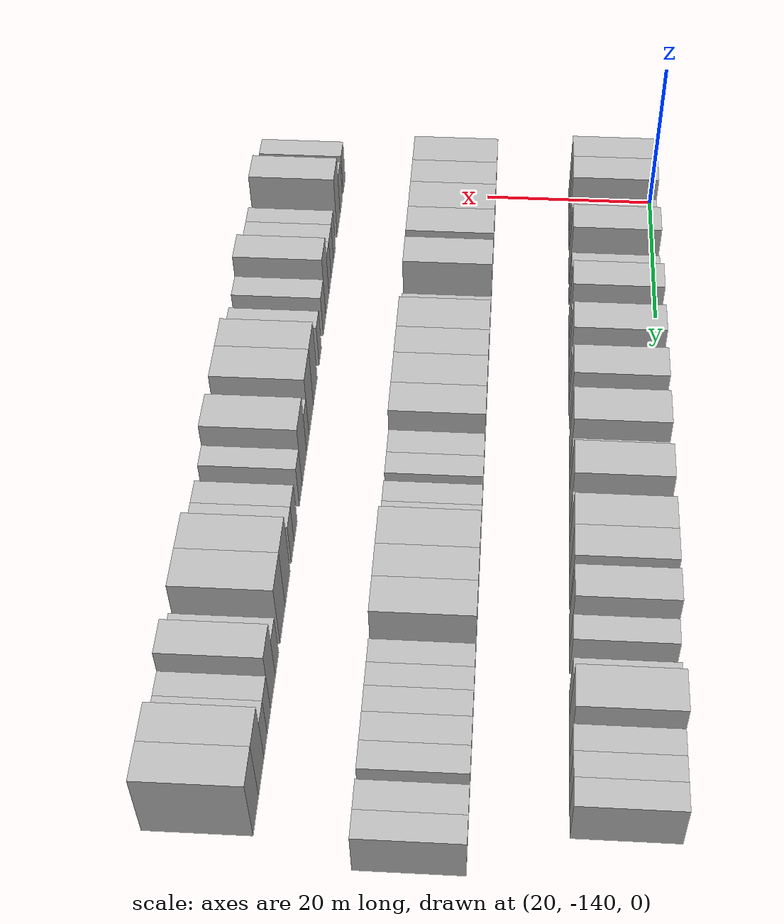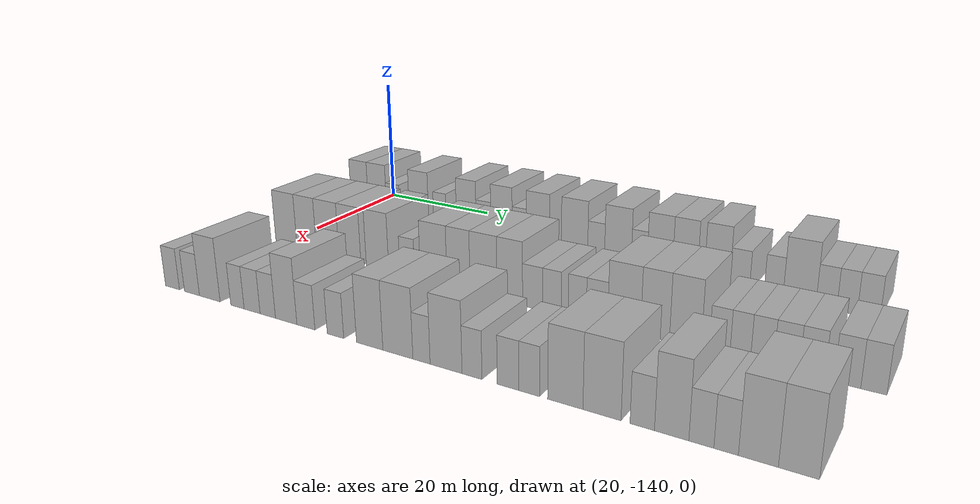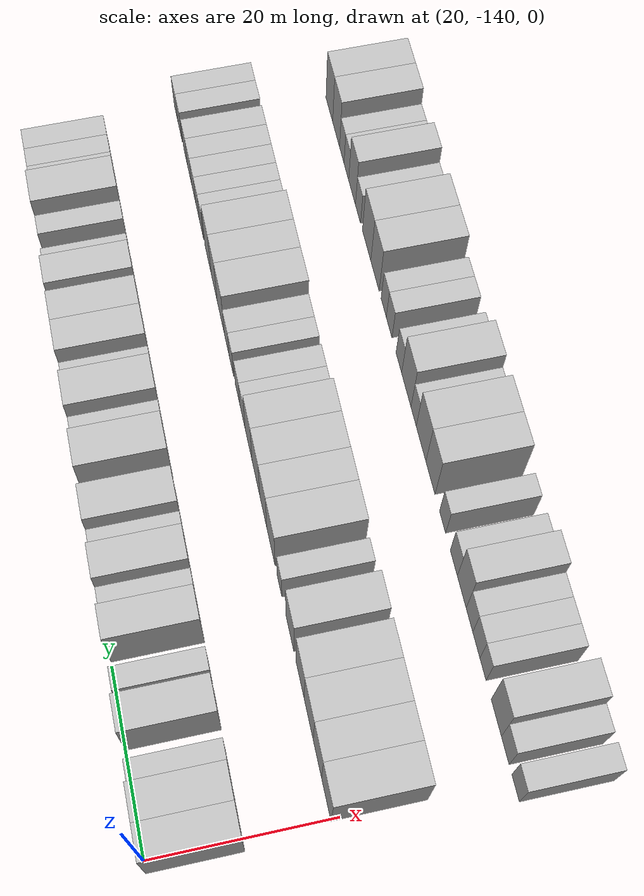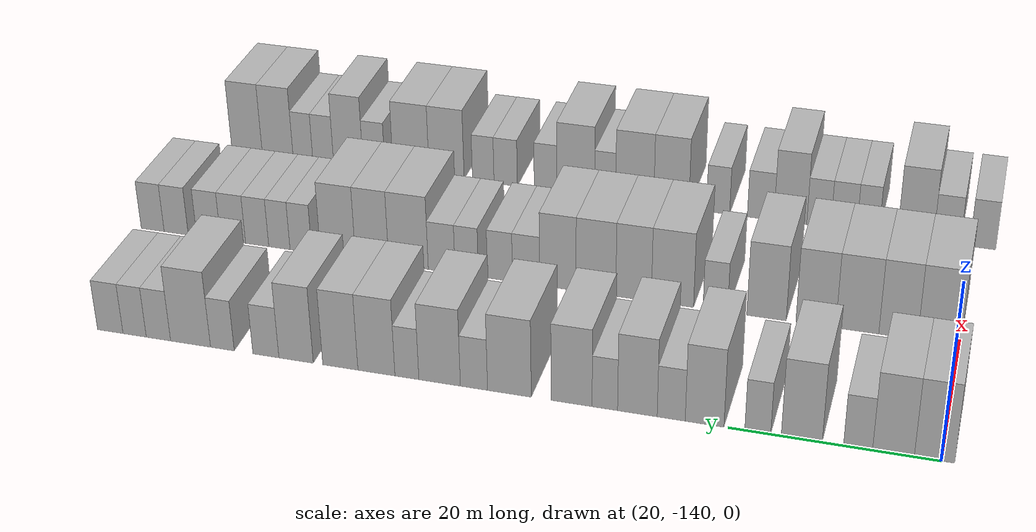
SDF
<sdf version="1.6">
 <world name="default">
  <model name="building_24">
   <static>1</static>
   <pose>25.0000 -139.3913 0 0.000000 0.000000 0.000000</pose>
   <link name="link">
    <pose>0 0 4.50 0 0 0</pose>
    <collision name="collision"><geometry><box><size>10.0000 3.7280 9.0000</size></box></geometry></collision>
    <visual name="visual">
     <cast_shadows>0</cast_shadows>
     <geometry><box><size>10.0000 3.7280 9.0000</size></box></geometry>
     <material>
      <script>
       <uri>model://HANNAS_wall/materials/scripts</uri>
       <uri>model://HANNAS_wall/materials/textures</uri>
       <name>vrc/HANNAS_wall</name>
      </script>
     </material>
    </visual>
   </link>
  </model>
  <model name="building_25">
   <static>1</static>
   <pose>25.0000 -135.5879 0 0.000000 0.000000 0.000000</pose>
   <link name="link">
    <pose>0 0 4.50 0 0 0</pose>
    <collision name="collision"><geometry><box><size>10.0000 3.8788 9.0000</size></box></geometry></collision>
    <visual name="visual">
     <cast_shadows>0</cast_shadows>
     <geometry><box><size>10.0000 3.8788 9.0000</size></box></geometry>
     <material>
      <script>
       <uri>model://HANNAS_wall/materials/scripts</uri>
       <uri>model://HANNAS_wall/materials/textures</uri>
       <name>vrc/HANNAS_wall</name>
      </script>
     </material>
    </visual>
   </link>
  </model>
  <model name="building_26">
   <static>1</static>
   <pose>25.0000 -132.2880 0 0.000000 0.000000 0.000000</pose>
   <link name="link">
    <pose>0 0 3.00 0 0 0</pose>
    <collision name="collision"><geometry><box><size>10.0000 2.7209 6.0000</size></box></geometry></collision>
    <visual name="visual">
     <cast_shadows>0</cast_shadows>
     <geometry><box><size>10.0000 2.7209 6.0000</size></box></geometry>
     <material>
      <script>
       <uri>model://HANNAS_wall/materials/scripts</uri>
       <uri>model://HANNAS_wall/materials/textures</uri>
       <name>vrc/HANNAS_wall</name>
      </script>
     </material>
    </visual>
   </link>
  </model>
  <model name="building_27">
   <static>1</static>
   <pose>25.0000 -126.9811 0 0.000000 0.000000 0.000000</pose>
   <link name="link">
    <pose>0 0 4.50 0 0 0</pose>
    <collision name="collision"><geometry><box><size>10.0000 3.8929 9.0000</size></box></geometry></collision>
    <visual name="visual">
     <cast_shadows>0</cast_shadows>
     <geometry><box><size>10.0000 3.8929 9.0000</size></box></geometry>
     <material>
      <script>
       <uri>model://HANNAS_wall/materials/scripts</uri>
       <uri>model://HANNAS_wall/materials/textures</uri>
       <name>vrc/HANNAS_wall</name>
      </script>
     </material>
    </visual>
   </link>
  </model>
  <model name="building_28">
   <static>1</static>
   <pose>25.0000 -122.7918 0 0.000000 0.000000 0.000000</pose>
   <link name="link">
    <pose>0 0 3.00 0 0 0</pose>
    <collision name="collision"><geometry><box><size>10.0000 2.4857 6.0000</size></box></geometry></collision>
    <visual name="visual">
     <cast_shadows>0</cast_shadows>
     <geometry><box><size>10.0000 2.4857 6.0000</size></box></geometry>
     <material>
      <script>
       <uri>model://HANNAS_wall/materials/scripts</uri>
       <uri>model://HANNAS_wall/materials/textures</uri>
       <name>vrc/HANNAS_wall</name>
      </script>
     </material>
    </visual>
   </link>
  </model>
  <model name="building_29">
   <static>1</static>
   <pose>25.0000 -117.6742 0 0.000000 0.000000 0.000000</pose>
   <link name="link">
    <pose>0 0 4.50 0 0 0</pose>
    <collision name="collision"><geometry><box><size>10.0000 3.7495 9.0000</size></box></geometry></collision>
    <visual name="visual">
     <cast_shadows>0</cast_shadows>
     <geometry><box><size>10.0000 3.7495 9.0000</size></box></geometry>
     <material>
      <script>
       <uri>model://HANNAS_wall/materials/scripts</uri>
       <uri>model://HANNAS_wall/materials/textures</uri>
       <name>vrc/HANNAS_wall</name>
      </script>
     </material>
    </visual>
   </link>
  </model>
  <model name="building_30">
   <static>1</static>
   <pose>25.0000 -114.4299 0 0.000000 0.000000 0.000000</pose>
   <link name="link">
    <pose>0 0 3.00 0 0 0</pose>
    <collision name="collision"><geometry><box><size>10.0000 2.7391 6.0000</size></box></geometry></collision>
    <visual name="visual">
     <cast_shadows>0</cast_shadows>
     <geometry><box><size>10.0000 2.7391 6.0000</size></box></geometry>
     <material>
      <script>
       <uri>model://HANNAS_wall/materials/scripts</uri>
       <uri>model://HANNAS_wall/materials/textures</uri>
       <name>vrc/HANNAS_wall</name>
      </script>
     </material>
    </visual>
   </link>
  </model>
  <model name="building_31">
   <static>1</static>
   <pose>25.0000 -111.1152 0 0.000000 0.000000 0.000000</pose>
   <link name="link">
    <pose>0 0 4.50 0 0 0</pose>
    <collision name="collision"><geometry><box><size>10.0000 3.8903 9.0000</size></box></geometry></collision>
    <visual name="visual">
     <cast_shadows>0</cast_shadows>
     <geometry><box><size>10.0000 3.8903 9.0000</size></box></geometry>
     <material>
      <script>
       <uri>model://HANNAS_wall/materials/scripts</uri>
       <uri>model://HANNAS_wall/materials/textures</uri>
       <name>vrc/HANNAS_wall</name>
      </script>
     </material>
    </visual>
   </link>
  </model>
  <model name="building_32">
   <static>1</static>
   <pose>25.0000 -107.9080 0 0.000000 0.000000 0.000000</pose>
   <link name="link">
    <pose>0 0 3.00 0 0 0</pose>
    <collision name="collision"><geometry><box><size>10.0000 2.5241 6.0000</size></box></geometry></collision>
    <visual name="visual">
     <cast_shadows>0</cast_shadows>
     <geometry><box><size>10.0000 2.5241 6.0000</size></box></geometry>
     <material>
      <script>
       <uri>model://HANNAS_wall/materials/scripts</uri>
       <uri>model://HANNAS_wall/materials/textures</uri>
       <name>vrc/HANNAS_wall</name>
      </script>
     </material>
    </visual>
   </link>
  </model>
  <model name="building_33">
   <static>1</static>
   <pose>25.0000 -104.6113 0 0.000000 0.000000 0.000000</pose>
   <link name="link">
    <pose>0 0 4.50 0 0 0</pose>
    <collision name="collision"><geometry><box><size>10.0000 4.0692 9.0000</size></box></geometry></collision>
    <visual name="visual">
     <cast_shadows>0</cast_shadows>
     <geometry><box><size>10.0000 4.0692 9.0000</size></box></geometry>
     <material>
      <script>
       <uri>model://HANNAS_wall/materials/scripts</uri>
       <uri>model://HANNAS_wall/materials/textures</uri>
       <name>vrc/HANNAS_wall</name>
      </script>
     </material>
    </visual>
   </link>
  </model>
  <model name="building_34">
   <static>1</static>
   <pose>25.0000 -98.3642 0 0.000000 0.000000 0.000000</pose>
   <link name="link">
    <pose>0 0 4.50 0 0 0</pose>
    <collision name="collision"><geometry><box><size>10.0000 4.4251 9.0000</size></box></geometry></collision>
    <visual name="visual">
     <cast_shadows>0</cast_shadows>
     <geometry><box><size>10.0000 4.4251 9.0000</size></box></geometry>
     <material>
      <script>
       <uri>model://HANNAS_wall/materials/scripts</uri>
       <uri>model://HANNAS_wall/materials/textures</uri>
       <name>vrc/HANNAS_wall</name>
      </script>
     </material>
    </visual>
   </link>
  </model>
  <model name="building_35">
   <static>1</static>
   <pose>25.0000 -94.7685 0 0.000000 0.000000 0.000000</pose>
   <link name="link">
    <pose>0 0 3.00 0 0 0</pose>
    <collision name="collision"><geometry><box><size>10.0000 2.7663 6.0000</size></box></geometry></collision>
    <visual name="visual">
     <cast_shadows>0</cast_shadows>
     <geometry><box><size>10.0000 2.7663 6.0000</size></box></geometry>
     <material>
      <script>
       <uri>model://HANNAS_wall/materials/scripts</uri>
       <uri>model://HANNAS_wall/materials/textures</uri>
       <name>vrc/HANNAS_wall</name>
      </script>
     </material>
    </visual>
   </link>
  </model>
  <model name="building_36">
   <static>1</static>
   <pose>25.0000 -91.2528 0 0.000000 0.000000 0.000000</pose>
   <link name="link">
    <pose>0 0 4.50 0 0 0</pose>
    <collision name="collision"><geometry><box><size>10.0000 4.2651 9.0000</size></box></geometry></collision>
    <visual name="visual">
     <cast_shadows>0</cast_shadows>
     <geometry><box><size>10.0000 4.2651 9.0000</size></box></geometry>
     <material>
      <script>
       <uri>model://HANNAS_wall/materials/scripts</uri>
       <uri>model://HANNAS_wall/materials/textures</uri>
       <name>vrc/HANNAS_wall</name>
      </script>
     </material>
    </visual>
   </link>
  </model>
  <model name="building_37">
   <static>1</static>
   <pose>25.0000 -87.8840 0 0.000000 0.000000 0.000000</pose>
   <link name="link">
    <pose>0 0 3.00 0 0 0</pose>
    <collision name="collision"><geometry><box><size>10.0000 2.4725 6.0000</size></box></geometry></collision>
    <visual name="visual">
     <cast_shadows>0</cast_shadows>
     <geometry><box><size>10.0000 2.4725 6.0000</size></box></geometry>
     <material>
      <script>
       <uri>model://HANNAS_wall/materials/scripts</uri>
       <uri>model://HANNAS_wall/materials/textures</uri>
       <name>vrc/HANNAS_wall</name>
      </script>
     </material>
    </visual>
   </link>
  </model>
  <model name="building_38">
   <static>1</static>
   <pose>25.0000 -84.7188 0 0.000000 0.000000 0.000000</pose>
   <link name="link">
    <pose>0 0 4.50 0 0 0</pose>
    <collision name="collision"><geometry><box><size>10.0000 3.8577 9.0000</size></box></geometry></collision>
    <visual name="visual">
     <cast_shadows>0</cast_shadows>
     <geometry><box><size>10.0000 3.8577 9.0000</size></box></geometry>
     <material>
      <script>
       <uri>model://HANNAS_wall/materials/scripts</uri>
       <uri>model://HANNAS_wall/materials/textures</uri>
       <name>vrc/HANNAS_wall</name>
      </script>
     </material>
    </visual>
   </link>
  </model>
  <model name="building_39">
   <static>1</static>
   <pose>25.0000 -80.9437 0 0.000000 0.000000 0.000000</pose>
   <link name="link">
    <pose>0 0 4.50 0 0 0</pose>
    <collision name="collision"><geometry><box><size>10.0000 3.6927 9.0000</size></box></geometry></collision>
    <visual name="visual">
     <cast_shadows>0</cast_shadows>
     <geometry><box><size>10.0000 3.6927 9.0000</size></box></geometry>
     <material>
      <script>
       <uri>model://HANNAS_wall/materials/scripts</uri>
       <uri>model://HANNAS_wall/materials/textures</uri>
       <name>vrc/HANNAS_wall</name>
      </script>
     </material>
    </visual>
   </link>
  </model>
  <model name="building_40">
   <static>1</static>
   <pose>25.0000 -76.2715 0 0.000000 0.000000 0.000000</pose>
   <link name="link">
    <pose>0 0 4.50 0 0 0</pose>
    <collision name="collision"><geometry><box><size>10.0000 3.6517 9.0000</size></box></geometry></collision>
    <visual name="visual">
     <cast_shadows>0</cast_shadows>
     <geometry><box><size>10.0000 3.6517 9.0000</size></box></geometry>
     <material>
      <script>
       <uri>model://HANNAS_wall/materials/scripts</uri>
       <uri>model://HANNAS_wall/materials/textures</uri>
       <name>vrc/HANNAS_wall</name>
      </script>
     </material>
    </visual>
   </link>
  </model>
  <model name="building_41">
   <static>1</static>
   <pose>25.0000 -73.0580 0 0.000000 0.000000 0.000000</pose>
   <link name="link">
    <pose>0 0 3.00 0 0 0</pose>
    <collision name="collision"><geometry><box><size>10.0000 2.7753 6.0000</size></box></geometry></collision>
    <visual name="visual">
     <cast_shadows>0</cast_shadows>
     <geometry><box><size>10.0000 2.7753 6.0000</size></box></geometry>
     <material>
      <script>
       <uri>model://HANNAS_wall/materials/scripts</uri>
       <uri>model://HANNAS_wall/materials/textures</uri>
       <name>vrc/HANNAS_wall</name>
      </script>
     </material>
    </visual>
   </link>
  </model>
  <model name="building_42">
   <static>1</static>
   <pose>25.0000 -68.3891 0 0.000000 0.000000 0.000000</pose>
   <link name="link">
    <pose>0 0 3.00 0 0 0</pose>
    <collision name="collision"><geometry><box><size>10.0000 2.5624 6.0000</size></box></geometry></collision>
    <visual name="visual">
     <cast_shadows>0</cast_shadows>
     <geometry><box><size>10.0000 2.5624 6.0000</size></box></geometry>
     <material>
      <script>
       <uri>model://HANNAS_wall/materials/scripts</uri>
       <uri>model://HANNAS_wall/materials/textures</uri>
       <name>vrc/HANNAS_wall</name>
      </script>
     </material>
    </visual>
   </link>
  </model>
  <model name="building_43">
   <static>1</static>
   <pose>25.0000 -64.9371 0 0.000000 0.000000 0.000000</pose>
   <link name="link">
    <pose>0 0 4.50 0 0 0</pose>
    <collision name="collision"><geometry><box><size>10.0000 4.3416 9.0000</size></box></geometry></collision>
    <visual name="visual">
     <cast_shadows>0</cast_shadows>
     <geometry><box><size>10.0000 4.3416 9.0000</size></box></geometry>
     <material>
      <script>
       <uri>model://HANNAS_wall/materials/scripts</uri>
       <uri>model://HANNAS_wall/materials/textures</uri>
       <name>vrc/HANNAS_wall</name>
      </script>
     </material>
    </visual>
   </link>
  </model>
  <model name="building_44">
   <static>1</static>
   <pose>25.0000 -61.4347 0 0.000000 0.000000 0.000000</pose>
   <link name="link">
    <pose>0 0 3.00 0 0 0</pose>
    <collision name="collision"><geometry><box><size>10.0000 2.6632 6.0000</size></box></geometry></collision>
    <visual name="visual">
     <cast_shadows>0</cast_shadows>
     <geometry><box><size>10.0000 2.6632 6.0000</size></box></geometry>
     <material>
      <script>
       <uri>model://HANNAS_wall/materials/scripts</uri>
       <uri>model://HANNAS_wall/materials/textures</uri>
       <name>vrc/HANNAS_wall</name>
      </script>
     </material>
    </visual>
   </link>
  </model>
  <model name="building_45">
   <static>1</static>
   <pose>25.0000 -58.8214 0 0.000000 0.000000 0.000000</pose>
   <link name="link">
    <pose>0 0 3.00 0 0 0</pose>
    <collision name="collision"><geometry><box><size>10.0000 2.5635 6.0000</size></box></geometry></collision>
    <visual name="visual">
     <cast_shadows>0</cast_shadows>
     <geometry><box><size>10.0000 2.5635 6.0000</size></box></geometry>
     <material>
      <script>
       <uri>model://HANNAS_wall/materials/scripts</uri>
       <uri>model://HANNAS_wall/materials/textures</uri>
       <name>vrc/HANNAS_wall</name>
      </script>
     </material>
    </visual>
   </link>
  </model>
  <model name="building_46">
   <static>1</static>
   <pose>25.0000 -56.1312 0 0.000000 0.000000 0.000000</pose>
   <link name="link">
    <pose>0 0 3.00 0 0 0</pose>
    <collision name="collision"><geometry><box><size>10.0000 2.8169 6.0000</size></box></geometry></collision>
    <visual name="visual">
     <cast_shadows>0</cast_shadows>
     <geometry><box><size>10.0000 2.8169 6.0000</size></box></geometry>
     <material>
      <script>
       <uri>model://HANNAS_wall/materials/scripts</uri>
       <uri>model://HANNAS_wall/materials/textures</uri>
       <name>vrc/HANNAS_wall</name>
      </script>
     </material>
    </visual>
   </link>
  </model>
  <model name="building_146">
   <static>1</static>
   <pose>44.0000 -138.0313 0 0.000000 0.000000 0.000000</pose>
   <link name="link">
    <pose>0 0 4.50 0 0 0</pose>
    <collision name="collision"><geometry><box><size>10.0000 4.3309 9.0000</size></box></geometry></collision>
    <visual name="visual">
     <cast_shadows>0</cast_shadows>
     <geometry><box><size>10.0000 4.3309 9.0000</size></box></geometry>
     <material>
      <script>
       <uri>model://HANNAS_wall/materials/scripts</uri>
       <uri>model://HANNAS_wall/materials/textures</uri>
       <name>vrc/HANNAS_wall</name>
      </script>
     </material>
    </visual>
   </link>
  </model>
  <model name="building_147">
   <static>1</static>
   <pose>44.0000 -133.9076 0 0.000000 0.000000 0.000000</pose>
   <link name="link">
    <pose>0 0 4.50 0 0 0</pose>
    <collision name="collision"><geometry><box><size>10.0000 3.9166 9.0000</size></box></geometry></collision>
    <visual name="visual">
     <cast_shadows>0</cast_shadows>
     <geometry><box><size>10.0000 3.9166 9.0000</size></box></geometry>
     <material>
      <script>
       <uri>model://HANNAS_wall/materials/scripts</uri>
       <uri>model://HANNAS_wall/materials/textures</uri>
       <name>vrc/HANNAS_wall</name>
      </script>
     </material>
    </visual>
   </link>
  </model>
  <model name="building_148">
   <static>1</static>
   <pose>44.0000 -129.7570 0 0.000000 0.000000 0.000000</pose>
   <link name="link">
    <pose>0 0 4.50 0 0 0</pose>
    <collision name="collision"><geometry><box><size>10.0000 4.3845 9.0000</size></box></geometry></collision>
    <visual name="visual">
     <cast_shadows>0</cast_shadows>
     <geometry><box><size>10.0000 4.3845 9.0000</size></box></geometry>
     <material>
      <script>
       <uri>model://HANNAS_wall/materials/scripts</uri>
       <uri>model://HANNAS_wall/materials/textures</uri>
       <name>vrc/HANNAS_wall</name>
      </script>
     </material>
    </visual>
   </link>
  </model>
  <model name="building_149">
   <static>1</static>
   <pose>44.0000 -125.5167 0 0.000000 0.000000 0.000000</pose>
   <link name="link">
    <pose>0 0 4.50 0 0 0</pose>
    <collision name="collision"><geometry><box><size>10.0000 4.0962 9.0000</size></box></geometry></collision>
    <visual name="visual">
     <cast_shadows>0</cast_shadows>
     <geometry><box><size>10.0000 4.0962 9.0000</size></box></geometry>
     <material>
      <script>
       <uri>model://HANNAS_wall/materials/scripts</uri>
       <uri>model://HANNAS_wall/materials/textures</uri>
       <name>vrc/HANNAS_wall</name>
      </script>
     </material>
    </visual>
   </link>
  </model>
  <model name="building_150">
   <static>1</static>
   <pose>44.0000 -120.4206 0 0.000000 0.000000 0.000000</pose>
   <link name="link">
    <pose>0 0 4.50 0 0 0</pose>
    <collision name="collision"><geometry><box><size>10.0000 4.0960 9.0000</size></box></geometry></collision>
    <visual name="visual">
     <cast_shadows>0</cast_shadows>
     <geometry><box><size>10.0000 4.0960 9.0000</size></box></geometry>
     <material>
      <script>
       <uri>model://HANNAS_wall/materials/scripts</uri>
       <uri>model://HANNAS_wall/materials/textures</uri>
       <name>vrc/HANNAS_wall</name>
      </script>
     </material>
    </visual>
   </link>
  </model>
  <model name="building_151">
   <static>1</static>
   <pose>44.0000 -115.0784 0 0.000000 0.000000 0.000000</pose>
   <link name="link">
    <pose>0 0 3.00 0 0 0</pose>
    <collision name="collision"><geometry><box><size>10.0000 2.5884 6.0000</size></box></geometry></collision>
    <visual name="visual">
     <cast_shadows>0</cast_shadows>
     <geometry><box><size>10.0000 2.5884 6.0000</size></box></geometry>
     <material>
      <script>
       <uri>model://HANNAS_wall/materials/scripts</uri>
       <uri>model://HANNAS_wall/materials/textures</uri>
       <name>vrc/HANNAS_wall</name>
      </script>
     </material>
    </visual>
   </link>
  </model>
  <model name="building_152">
   <static>1</static>
   <pose>44.0000 -110.5434 0 0.000000 0.000000 0.000000</pose>
   <link name="link">
    <pose>0 0 4.50 0 0 0</pose>
    <collision name="collision"><geometry><box><size>10.0000 4.4815 9.0000</size></box></geometry></collision>
    <visual name="visual">
     <cast_shadows>0</cast_shadows>
     <geometry><box><size>10.0000 4.4815 9.0000</size></box></geometry>
     <material>
      <script>
       <uri>model://HANNAS_wall/materials/scripts</uri>
       <uri>model://HANNAS_wall/materials/textures</uri>
       <name>vrc/HANNAS_wall</name>
      </script>
     </material>
    </visual>
   </link>
  </model>
  <model name="building_153">
   <static>1</static>
   <pose>44.0000 -106.4022 0 0.000000 0.000000 0.000000</pose>
   <link name="link">
    <pose>0 0 4.50 0 0 0</pose>
    <collision name="collision"><geometry><box><size>10.0000 3.8010 9.0000</size></box></geometry></collision>
    <visual name="visual">
     <cast_shadows>0</cast_shadows>
     <geometry><box><size>10.0000 3.8010 9.0000</size></box></geometry>
     <material>
      <script>
       <uri>model://HANNAS_wall/materials/scripts</uri>
       <uri>model://HANNAS_wall/materials/textures</uri>
       <name>vrc/HANNAS_wall</name>
      </script>
     </material>
    </visual>
   </link>
  </model>
  <model name="building_154">
   <static>1</static>
   <pose>44.0000 -102.3584 0 0.000000 0.000000 0.000000</pose>
   <link name="link">
    <pose>0 0 4.50 0 0 0</pose>
    <collision name="collision"><geometry><box><size>10.0000 4.2866 9.0000</size></box></geometry></collision>
    <visual name="visual">
     <cast_shadows>0</cast_shadows>
     <geometry><box><size>10.0000 4.2866 9.0000</size></box></geometry>
     <material>
      <script>
       <uri>model://HANNAS_wall/materials/scripts</uri>
       <uri>model://HANNAS_wall/materials/textures</uri>
       <name>vrc/HANNAS_wall</name>
      </script>
     </material>
    </visual>
   </link>
  </model>
  <model name="building_155">
   <static>1</static>
   <pose>44.0000 -98.2399 0 0.000000 0.000000 0.000000</pose>
   <link name="link">
    <pose>0 0 4.50 0 0 0</pose>
    <collision name="collision"><geometry><box><size>10.0000 3.9503 9.0000</size></box></geometry></collision>
    <visual name="visual">
     <cast_shadows>0</cast_shadows>
     <geometry><box><size>10.0000 3.9503 9.0000</size></box></geometry>
     <material>
      <script>
       <uri>model://HANNAS_wall/materials/scripts</uri>
       <uri>model://HANNAS_wall/materials/textures</uri>
       <name>vrc/HANNAS_wall</name>
      </script>
     </material>
    </visual>
   </link>
  </model>
  <model name="building_156">
   <static>1</static>
   <pose>44.0000 -94.7718 0 0.000000 0.000000 0.000000</pose>
   <link name="link">
    <pose>0 0 3.00 0 0 0</pose>
    <collision name="collision"><geometry><box><size>10.0000 2.9860 6.0000</size></box></geometry></collision>
    <visual name="visual">
     <cast_shadows>0</cast_shadows>
     <geometry><box><size>10.0000 2.9860 6.0000</size></box></geometry>
     <material>
      <script>
       <uri>model://HANNAS_wall/materials/scripts</uri>
       <uri>model://HANNAS_wall/materials/textures</uri>
       <name>vrc/HANNAS_wall</name>
      </script>
     </material>
    </visual>
   </link>
  </model>
  <model name="building_157">
   <static>1</static>
   <pose>44.0000 -91.9000 0 0.000000 0.000000 0.000000</pose>
   <link name="link">
    <pose>0 0 3.00 0 0 0</pose>
    <collision name="collision"><geometry><box><size>10.0000 2.7576 6.0000</size></box></geometry></collision>
    <visual name="visual">
     <cast_shadows>0</cast_shadows>
     <geometry><box><size>10.0000 2.7576 6.0000</size></box></geometry>
     <material>
      <script>
       <uri>model://HANNAS_wall/materials/scripts</uri>
       <uri>model://HANNAS_wall/materials/textures</uri>
       <name>vrc/HANNAS_wall</name>
      </script>
     </material>
    </visual>
   </link>
  </model>
  <model name="building_158">
   <static>1</static>
   <pose>44.0000 -88.2267 0 0.000000 0.000000 0.000000</pose>
   <link name="link">
    <pose>0 0 3.00 0 0 0</pose>
    <collision name="collision"><geometry><box><size>10.0000 2.5892 6.0000</size></box></geometry></collision>
    <visual name="visual">
     <cast_shadows>0</cast_shadows>
     <geometry><box><size>10.0000 2.5892 6.0000</size></box></geometry>
     <material>
      <script>
       <uri>model://HANNAS_wall/materials/scripts</uri>
       <uri>model://HANNAS_wall/materials/textures</uri>
       <name>vrc/HANNAS_wall</name>
      </script>
     </material>
    </visual>
   </link>
  </model>
  <model name="building_159">
   <static>1</static>
   <pose>44.0000 -85.4359 0 0.000000 0.000000 0.000000</pose>
   <link name="link">
    <pose>0 0 3.00 0 0 0</pose>
    <collision name="collision"><geometry><box><size>10.0000 2.9924 6.0000</size></box></geometry></collision>
    <visual name="visual">
     <cast_shadows>0</cast_shadows>
     <geometry><box><size>10.0000 2.9924 6.0000</size></box></geometry>
     <material>
      <script>
       <uri>model://HANNAS_wall/materials/scripts</uri>
       <uri>model://HANNAS_wall/materials/textures</uri>
       <name>vrc/HANNAS_wall</name>
      </script>
     </material>
    </visual>
   </link>
  </model>
  <model name="building_160">
   <static>1</static>
   <pose>44.0000 -81.7168 0 0.000000 0.000000 0.000000</pose>
   <link name="link">
    <pose>0 0 4.50 0 0 0</pose>
    <collision name="collision"><geometry><box><size>10.0000 4.4457 9.0000</size></box></geometry></collision>
    <visual name="visual">
     <cast_shadows>0</cast_shadows>
     <geometry><box><size>10.0000 4.4457 9.0000</size></box></geometry>
     <material>
      <script>
       <uri>model://HANNAS_wall/materials/scripts</uri>
       <uri>model://HANNAS_wall/materials/textures</uri>
       <name>vrc/HANNAS_wall</name>
      </script>
     </material>
    </visual>
   </link>
  </model>
  <model name="building_161">
   <static>1</static>
   <pose>44.0000 -77.6074 0 0.000000 0.000000 0.000000</pose>
   <link name="link">
    <pose>0 0 4.50 0 0 0</pose>
    <collision name="collision"><geometry><box><size>10.0000 3.7731 9.0000</size></box></geometry></collision>
    <visual name="visual">
     <cast_shadows>0</cast_shadows>
     <geometry><box><size>10.0000 3.7731 9.0000</size></box></geometry>
     <material>
      <script>
       <uri>model://HANNAS_wall/materials/scripts</uri>
       <uri>model://HANNAS_wall/materials/textures</uri>
       <name>vrc/HANNAS_wall</name>
      </script>
     </material>
    </visual>
   </link>
  </model>
  <model name="building_162">
   <static>1</static>
   <pose>44.0000 -73.7198 0 0.000000 0.000000 0.000000</pose>
   <link name="link">
    <pose>0 0 4.50 0 0 0</pose>
    <collision name="collision"><geometry><box><size>10.0000 4.0021 9.0000</size></box></geometry></collision>
    <visual name="visual">
     <cast_shadows>0</cast_shadows>
     <geometry><box><size>10.0000 4.0021 9.0000</size></box></geometry>
     <material>
      <script>
       <uri>model://HANNAS_wall/materials/scripts</uri>
       <uri>model://HANNAS_wall/materials/textures</uri>
       <name>vrc/HANNAS_wall</name>
      </script>
     </material>
    </visual>
   </link>
  </model>
  <model name="building_163">
   <static>1</static>
   <pose>44.0000 -69.4622 0 0.000000 0.000000 0.000000</pose>
   <link name="link">
    <pose>0 0 3.00 0 0 0</pose>
    <collision name="collision"><geometry><box><size>10.0000 2.5132 6.0000</size></box></geometry></collision>
    <visual name="visual">
     <cast_shadows>0</cast_shadows>
     <geometry><box><size>10.0000 2.5132 6.0000</size></box></geometry>
     <material>
      <script>
       <uri>model://HANNAS_wall/materials/scripts</uri>
       <uri>model://HANNAS_wall/materials/textures</uri>
       <name>vrc/HANNAS_wall</name>
      </script>
     </material>
    </visual>
   </link>
  </model>
  <model name="building_164">
   <static>1</static>
   <pose>44.0000 -66.9730 0 0.000000 0.000000 0.000000</pose>
   <link name="link">
    <pose>0 0 3.00 0 0 0</pose>
    <collision name="collision"><geometry><box><size>10.0000 2.4651 6.0000</size></box></geometry></collision>
    <visual name="visual">
     <cast_shadows>0</cast_shadows>
     <geometry><box><size>10.0000 2.4651 6.0000</size></box></geometry>
     <material>
      <script>
       <uri>model://HANNAS_wall/materials/scripts</uri>
       <uri>model://HANNAS_wall/materials/textures</uri>
       <name>vrc/HANNAS_wall</name>
      </script>
     </material>
    </visual>
   </link>
  </model>
  <model name="building_165">
   <static>1</static>
   <pose>44.0000 -64.3908 0 0.000000 0.000000 0.000000</pose>
   <link name="link">
    <pose>0 0 3.00 0 0 0</pose>
    <collision name="collision"><geometry><box><size>10.0000 2.6995 6.0000</size></box></geometry></collision>
    <visual name="visual">
     <cast_shadows>0</cast_shadows>
     <geometry><box><size>10.0000 2.6995 6.0000</size></box></geometry>
     <material>
      <script>
       <uri>model://HANNAS_wall/materials/scripts</uri>
       <uri>model://HANNAS_wall/materials/textures</uri>
       <name>vrc/HANNAS_wall</name>
      </script>
     </material>
    </visual>
   </link>
  </model>
  <model name="building_166">
   <static>1</static>
   <pose>44.0000 -61.5819 0 0.000000 0.000000 0.000000</pose>
   <link name="link">
    <pose>0 0 3.00 0 0 0</pose>
    <collision name="collision"><geometry><box><size>10.0000 2.9183 6.0000</size></box></geometry></collision>
    <visual name="visual">
     <cast_shadows>0</cast_shadows>
     <geometry><box><size>10.0000 2.9183 6.0000</size></box></geometry>
     <material>
      <script>
       <uri>model://HANNAS_wall/materials/scripts</uri>
       <uri>model://HANNAS_wall/materials/textures</uri>
       <name>vrc/HANNAS_wall</name>
      </script>
     </material>
    </visual>
   </link>
  </model>
  <model name="building_167">
   <static>1</static>
   <pose>44.0000 -58.7132 0 0.000000 0.000000 0.000000</pose>
   <link name="link">
    <pose>0 0 3.00 0 0 0</pose>
    <collision name="collision"><geometry><box><size>10.0000 2.8190 6.0000</size></box></geometry></collision>
    <visual name="visual">
     <cast_shadows>0</cast_shadows>
     <geometry><box><size>10.0000 2.8190 6.0000</size></box></geometry>
     <material>
      <script>
       <uri>model://HANNAS_wall/materials/scripts</uri>
       <uri>model://HANNAS_wall/materials/textures</uri>
       <name>vrc/HANNAS_wall</name>
      </script>
     </material>
    </visual>
   </link>
  </model>
  <model name="building_168">
   <static>1</static>
   <pose>44.0000 -54.8727 0 0.000000 0.000000 0.000000</pose>
   <link name="link">
    <pose>0 0 3.00 0 0 0</pose>
    <collision name="collision"><geometry><box><size>10.0000 2.8621 6.0000</size></box></geometry></collision>
    <visual name="visual">
     <cast_shadows>0</cast_shadows>
     <geometry><box><size>10.0000 2.8621 6.0000</size></box></geometry>
     <material>
      <script>
       <uri>model://HANNAS_wall/materials/scripts</uri>
       <uri>model://HANNAS_wall/materials/textures</uri>
       <name>vrc/HANNAS_wall</name>
      </script>
     </material>
    </visual>
   </link>
  </model>
  <model name="building_169">
   <static>1</static>
   <pose>44.0000 -52.0777 0 0.000000 0.000000 0.000000</pose>
   <link name="link">
    <pose>0 0 3.00 0 0 0</pose>
    <collision name="collision"><geometry><box><size>10.0000 2.7279 6.0000</size></box></geometry></collision>
    <visual name="visual">
     <cast_shadows>0</cast_shadows>
     <geometry><box><size>10.0000 2.7279 6.0000</size></box></geometry>
     <material>
      <script>
       <uri>model://HANNAS_wall/materials/scripts</uri>
       <uri>model://HANNAS_wall/materials/textures</uri>
       <name>vrc/HANNAS_wall</name>
      </script>
     </material>
    </visual>
   </link>
  </model>
  <model name="building_266">
   <static>1</static>
   <pose>63.0000 -140.9416 0 0.000000 0.000000 0.000000</pose>
   <link name="link">
    <pose>0 0 3.00 0 0 0</pose>
    <collision name="collision"><geometry><box><size>10.0000 2.7878 6.0000</size></box></geometry></collision>
    <visual name="visual">
     <cast_shadows>0</cast_shadows>
     <geometry><box><size>10.0000 2.7878 6.0000</size></box></geometry>
     <material>
      <script>
       <uri>model://HANNAS_wall/materials/scripts</uri>
       <uri>model://HANNAS_wall/materials/textures</uri>
       <name>vrc/HANNAS_wall</name>
      </script>
     </material>
    </visual>
   </link>
  </model>
  <model name="building_267">
   <static>1</static>
   <pose>63.0000 -137.0863 0 0.000000 0.000000 0.000000</pose>
   <link name="link">
    <pose>0 0 3.00 0 0 0</pose>
    <collision name="collision"><geometry><box><size>10.0000 2.9228 6.0000</size></box></geometry></collision>
    <visual name="visual">
     <cast_shadows>0</cast_shadows>
     <geometry><box><size>10.0000 2.9228 6.0000</size></box></geometry>
     <material>
      <script>
       <uri>model://HANNAS_wall/materials/scripts</uri>
       <uri>model://HANNAS_wall/materials/textures</uri>
       <name>vrc/HANNAS_wall</name>
      </script>
     </material>
    </visual>
   </link>
  </model>
  <model name="building_268">
   <static>1</static>
   <pose>63.0000 -133.6628 0 0.000000 0.000000 0.000000</pose>
   <link name="link">
    <pose>0 0 4.50 0 0 0</pose>
    <collision name="collision"><geometry><box><size>10.0000 3.9240 9.0000</size></box></geometry></collision>
    <visual name="visual">
     <cast_shadows>0</cast_shadows>
     <geometry><box><size>10.0000 3.9240 9.0000</size></box></geometry>
     <material>
      <script>
       <uri>model://HANNAS_wall/materials/scripts</uri>
       <uri>model://HANNAS_wall/materials/textures</uri>
       <name>vrc/HANNAS_wall</name>
      </script>
     </material>
    </visual>
   </link>
  </model>
  <model name="building_269">
   <static>1</static>
   <pose>63.0000 -128.4822 0 0.000000 0.000000 0.000000</pose>
   <link name="link">
    <pose>0 0 3.00 0 0 0</pose>
    <collision name="collision"><geometry><box><size>10.0000 2.4371 6.0000</size></box></geometry></collision>
    <visual name="visual">
     <cast_shadows>0</cast_shadows>
     <geometry><box><size>10.0000 2.4371 6.0000</size></box></geometry>
     <material>
      <script>
       <uri>model://HANNAS_wall/materials/scripts</uri>
       <uri>model://HANNAS_wall/materials/textures</uri>
       <name>vrc/HANNAS_wall</name>
      </script>
     </material>
    </visual>
   </link>
  </model>
  <model name="building_270">
   <static>1</static>
   <pose>63.0000 -125.8296 0 0.000000 0.000000 0.000000</pose>
   <link name="link">
    <pose>0 0 3.00 0 0 0</pose>
    <collision name="collision"><geometry><box><size>10.0000 2.8682 6.0000</size></box></geometry></collision>
    <visual name="visual">
     <cast_shadows>0</cast_shadows>
     <geometry><box><size>10.0000 2.8682 6.0000</size></box></geometry>
     <material>
      <script>
       <uri>model://HANNAS_wall/materials/scripts</uri>
       <uri>model://HANNAS_wall/materials/textures</uri>
       <name>vrc/HANNAS_wall</name>
      </script>
     </material>
    </visual>
   </link>
  </model>
  <model name="building_271">
   <static>1</static>
   <pose>63.0000 -123.0527 0 0.000000 0.000000 0.000000</pose>
   <link name="link">
    <pose>0 0 3.00 0 0 0</pose>
    <collision name="collision"><geometry><box><size>10.0000 2.6856 6.0000</size></box></geometry></collision>
    <visual name="visual">
     <cast_shadows>0</cast_shadows>
     <geometry><box><size>10.0000 2.6856 6.0000</size></box></geometry>
     <material>
      <script>
       <uri>model://HANNAS_wall/materials/scripts</uri>
       <uri>model://HANNAS_wall/materials/textures</uri>
       <name>vrc/HANNAS_wall</name>
      </script>
     </material>
    </visual>
   </link>
  </model>
  <model name="building_272">
   <static>1</static>
   <pose>63.0000 -119.8796 0 0.000000 0.000000 0.000000</pose>
   <link name="link">
    <pose>0 0 4.50 0 0 0</pose>
    <collision name="collision"><geometry><box><size>10.0000 3.6606 9.0000</size></box></geometry></collision>
    <visual name="visual">
     <cast_shadows>0</cast_shadows>
     <geometry><box><size>10.0000 3.6606 9.0000</size></box></geometry>
     <material>
      <script>
       <uri>model://HANNAS_wall/materials/scripts</uri>
       <uri>model://HANNAS_wall/materials/textures</uri>
       <name>vrc/HANNAS_wall</name>
      </script>
     </material>
    </visual>
   </link>
  </model>
  <model name="building_273">
   <static>1</static>
   <pose>63.0000 -116.5522 0 0.000000 0.000000 0.000000</pose>
   <link name="link">
    <pose>0 0 3.00 0 0 0</pose>
    <collision name="collision"><geometry><box><size>10.0000 2.9943 6.0000</size></box></geometry></collision>
    <visual name="visual">
     <cast_shadows>0</cast_shadows>
     <geometry><box><size>10.0000 2.9943 6.0000</size></box></geometry>
     <material>
      <script>
       <uri>model://HANNAS_wall/materials/scripts</uri>
       <uri>model://HANNAS_wall/materials/textures</uri>
       <name>vrc/HANNAS_wall</name>
      </script>
     </material>
    </visual>
   </link>
  </model>
  <model name="building_274">
   <static>1</static>
   <pose>63.0000 -111.7385 0 0.000000 0.000000 0.000000</pose>
   <link name="link">
    <pose>0 0 3.00 0 0 0</pose>
    <collision name="collision"><geometry><box><size>10.0000 2.6331 6.0000</size></box></geometry></collision>
    <visual name="visual">
     <cast_shadows>0</cast_shadows>
     <geometry><box><size>10.0000 2.6331 6.0000</size></box></geometry>
     <material>
      <script>
       <uri>model://HANNAS_wall/materials/scripts</uri>
       <uri>model://HANNAS_wall/materials/textures</uri>
       <name>vrc/HANNAS_wall</name>
      </script>
     </material>
    </visual>
   </link>
  </model>
  <model name="building_275">
   <static>1</static>
   <pose>63.0000 -106.4092 0 0.000000 0.000000 0.000000</pose>
   <link name="link">
    <pose>0 0 4.50 0 0 0</pose>
    <collision name="collision"><geometry><box><size>10.0000 4.0256 9.0000</size></box></geometry></collision>
    <visual name="visual">
     <cast_shadows>0</cast_shadows>
     <geometry><box><size>10.0000 4.0256 9.0000</size></box></geometry>
     <material>
      <script>
       <uri>model://HANNAS_wall/materials/scripts</uri>
       <uri>model://HANNAS_wall/materials/textures</uri>
       <name>vrc/HANNAS_wall</name>
      </script>
     </material>
    </visual>
   </link>
  </model>
  <model name="building_276">
   <static>1</static>
   <pose>63.0000 -102.1901 0 0.000000 0.000000 0.000000</pose>
   <link name="link">
    <pose>0 0 4.50 0 0 0</pose>
    <collision name="collision"><geometry><box><size>10.0000 4.4126 9.0000</size></box></geometry></collision>
    <visual name="visual">
     <cast_shadows>0</cast_shadows>
     <geometry><box><size>10.0000 4.4126 9.0000</size></box></geometry>
     <material>
      <script>
       <uri>model://HANNAS_wall/materials/scripts</uri>
       <uri>model://HANNAS_wall/materials/textures</uri>
       <name>vrc/HANNAS_wall</name>
      </script>
     </material>
    </visual>
   </link>
  </model>
  <model name="building_277">
   <static>1</static>
   <pose>63.0000 -98.7589 0 0.000000 0.000000 0.000000</pose>
   <link name="link">
    <pose>0 0 3.00 0 0 0</pose>
    <collision name="collision"><geometry><box><size>10.0000 2.4498 6.0000</size></box></geometry></collision>
    <visual name="visual">
     <cast_shadows>0</cast_shadows>
     <geometry><box><size>10.0000 2.4498 6.0000</size></box></geometry>
     <material>
      <script>
       <uri>model://HANNAS_wall/materials/scripts</uri>
       <uri>model://HANNAS_wall/materials/textures</uri>
       <name>vrc/HANNAS_wall</name>
      </script>
     </material>
    </visual>
   </link>
  </model>
  <model name="building_278">
   <static>1</static>
   <pose>63.0000 -95.3261 0 0.000000 0.000000 0.000000</pose>
   <link name="link">
    <pose>0 0 4.50 0 0 0</pose>
    <collision name="collision"><geometry><box><size>10.0000 4.4159 9.0000</size></box></geometry></collision>
    <visual name="visual">
     <cast_shadows>0</cast_shadows>
     <geometry><box><size>10.0000 4.4159 9.0000</size></box></geometry>
     <material>
      <script>
       <uri>model://HANNAS_wall/materials/scripts</uri>
       <uri>model://HANNAS_wall/materials/textures</uri>
       <name>vrc/HANNAS_wall</name>
      </script>
     </material>
    </visual>
   </link>
  </model>
  <model name="building_279">
   <static>1</static>
   <pose>63.0000 -91.7864 0 0.000000 0.000000 0.000000</pose>
   <link name="link">
    <pose>0 0 3.00 0 0 0</pose>
    <collision name="collision"><geometry><box><size>10.0000 2.6636 6.0000</size></box></geometry></collision>
    <visual name="visual">
     <cast_shadows>0</cast_shadows>
     <geometry><box><size>10.0000 2.6636 6.0000</size></box></geometry>
     <material>
      <script>
       <uri>model://HANNAS_wall/materials/scripts</uri>
       <uri>model://HANNAS_wall/materials/textures</uri>
       <name>vrc/HANNAS_wall</name>
      </script>
     </material>
    </visual>
   </link>
  </model>
  <model name="building_280">
   <static>1</static>
   <pose>63.0000 -87.0660 0 0.000000 0.000000 0.000000</pose>
   <link name="link">
    <pose>0 0 3.00 0 0 0</pose>
    <collision name="collision"><geometry><box><size>10.0000 2.7772 6.0000</size></box></geometry></collision>
    <visual name="visual">
     <cast_shadows>0</cast_shadows>
     <geometry><box><size>10.0000 2.7772 6.0000</size></box></geometry>
     <material>
      <script>
       <uri>model://HANNAS_wall/materials/scripts</uri>
       <uri>model://HANNAS_wall/materials/textures</uri>
       <name>vrc/HANNAS_wall</name>
      </script>
     </material>
    </visual>
   </link>
  </model>
  <model name="building_281">
   <static>1</static>
   <pose>63.0000 -84.3896 0 0.000000 0.000000 0.000000</pose>
   <link name="link">
    <pose>0 0 3.00 0 0 0</pose>
    <collision name="collision"><geometry><box><size>10.0000 2.5756 6.0000</size></box></geometry></collision>
    <visual name="visual">
     <cast_shadows>0</cast_shadows>
     <geometry><box><size>10.0000 2.5756 6.0000</size></box></geometry>
     <material>
      <script>
       <uri>model://HANNAS_wall/materials/scripts</uri>
       <uri>model://HANNAS_wall/materials/textures</uri>
       <name>vrc/HANNAS_wall</name>
      </script>
     </material>
    </visual>
   </link>
  </model>
  <model name="building_282">
   <static>1</static>
   <pose>63.0000 -79.9928 0 0.000000 0.000000 0.000000</pose>
   <link name="link">
    <pose>0 0 4.50 0 0 0</pose>
    <collision name="collision"><geometry><box><size>10.0000 4.2180 9.0000</size></box></geometry></collision>
    <visual name="visual">
     <cast_shadows>0</cast_shadows>
     <geometry><box><size>10.0000 4.2180 9.0000</size></box></geometry>
     <material>
      <script>
       <uri>model://HANNAS_wall/materials/scripts</uri>
       <uri>model://HANNAS_wall/materials/textures</uri>
       <name>vrc/HANNAS_wall</name>
      </script>
     </material>
    </visual>
   </link>
  </model>
  <model name="building_283">
   <static>1</static>
   <pose>63.0000 -75.6951 0 0.000000 0.000000 0.000000</pose>
   <link name="link">
    <pose>0 0 4.50 0 0 0</pose>
    <collision name="collision"><geometry><box><size>10.0000 4.3776 9.0000</size></box></geometry></collision>
    <visual name="visual">
     <cast_shadows>0</cast_shadows>
     <geometry><box><size>10.0000 4.3776 9.0000</size></box></geometry>
     <material>
      <script>
       <uri>model://HANNAS_wall/materials/scripts</uri>
       <uri>model://HANNAS_wall/materials/textures</uri>
       <name>vrc/HANNAS_wall</name>
      </script>
     </material>
    </visual>
   </link>
  </model>
  <model name="building_284">
   <static>1</static>
   <pose>63.0000 -71.1657 0 0.000000 0.000000 0.000000</pose>
   <link name="link">
    <pose>0 0 3.00 0 0 0</pose>
    <collision name="collision"><geometry><box><size>10.0000 2.6813 6.0000</size></box></geometry></collision>
    <visual name="visual">
     <cast_shadows>0</cast_shadows>
     <geometry><box><size>10.0000 2.6813 6.0000</size></box></geometry>
     <material>
      <script>
       <uri>model://HANNAS_wall/materials/scripts</uri>
       <uri>model://HANNAS_wall/materials/textures</uri>
       <name>vrc/HANNAS_wall</name>
      </script>
     </material>
    </visual>
   </link>
  </model>
  <model name="building_285">
   <static>1</static>
   <pose>63.0000 -68.0036 0 0.000000 0.000000 0.000000</pose>
   <link name="link">
    <pose>0 0 4.50 0 0 0</pose>
    <collision name="collision"><geometry><box><size>10.0000 3.6428 9.0000</size></box></geometry></collision>
    <visual name="visual">
     <cast_shadows>0</cast_shadows>
     <geometry><box><size>10.0000 3.6428 9.0000</size></box></geometry>
     <material>
      <script>
       <uri>model://HANNAS_wall/materials/scripts</uri>
       <uri>model://HANNAS_wall/materials/textures</uri>
       <name>vrc/HANNAS_wall</name>
      </script>
     </material>
    </visual>
   </link>
  </model>
  <model name="building_286">
   <static>1</static>
   <pose>63.0000 -64.8941 0 0.000000 0.000000 0.000000</pose>
   <link name="link">
    <pose>0 0 3.00 0 0 0</pose>
    <collision name="collision"><geometry><box><size>10.0000 2.5762 6.0000</size></box></geometry></collision>
    <visual name="visual">
     <cast_shadows>0</cast_shadows>
     <geometry><box><size>10.0000 2.5762 6.0000</size></box></geometry>
     <material>
      <script>
       <uri>model://HANNAS_wall/materials/scripts</uri>
       <uri>model://HANNAS_wall/materials/textures</uri>
       <name>vrc/HANNAS_wall</name>
      </script>
     </material>
    </visual>
   </link>
  </model>
  <model name="building_287">
   <static>1</static>
   <pose>63.0000 -62.3807 0 0.000000 0.000000 0.000000</pose>
   <link name="link">
    <pose>0 0 3.00 0 0 0</pose>
    <collision name="collision"><geometry><box><size>10.0000 2.4506 6.0000</size></box></geometry></collision>
    <visual name="visual">
     <cast_shadows>0</cast_shadows>
     <geometry><box><size>10.0000 2.4506 6.0000</size></box></geometry>
     <material>
      <script>
       <uri>model://HANNAS_wall/materials/scripts</uri>
       <uri>model://HANNAS_wall/materials/textures</uri>
       <name>vrc/HANNAS_wall</name>
      </script>
     </material>
    </visual>
   </link>
  </model>
  <model name="building_288">
   <static>1</static>
   <pose>63.0000 -59.2205 0 0.000000 0.000000 0.000000</pose>
   <link name="link">
    <pose>0 0 4.50 0 0 0</pose>
    <collision name="collision"><geometry><box><size>10.0000 3.8698 9.0000</size></box></geometry></collision>
    <visual name="visual">
     <cast_shadows>0</cast_shadows>
     <geometry><box><size>10.0000 3.8698 9.0000</size></box></geometry>
     <material>
      <script>
       <uri>model://HANNAS_wall/materials/scripts</uri>
       <uri>model://HANNAS_wall/materials/textures</uri>
       <name>vrc/HANNAS_wall</name>
      </script>
     </material>
    </visual>
   </link>
  </model>
  <model name="building_289">
   <static>1</static>
   <pose>63.0000 -55.3718 0 0.000000 0.000000 0.000000</pose>
   <link name="link">
    <pose>0 0 4.50 0 0 0</pose>
    <collision name="collision"><geometry><box><size>10.0000 3.8275 9.0000</size></box></geometry></collision>
    <visual name="visual">
     <cast_shadows>0</cast_shadows>
     <geometry><box><size>10.0000 3.8275 9.0000</size></box></geometry>
     <material>
      <script>
       <uri>model://HANNAS_wall/materials/scripts</uri>
       <uri>model://HANNAS_wall/materials/textures</uri>
       <name>vrc/HANNAS_wall</name>
      </script>
     </material>
    </visual>
   </link>
  </model>
 </world>
</sdf>
